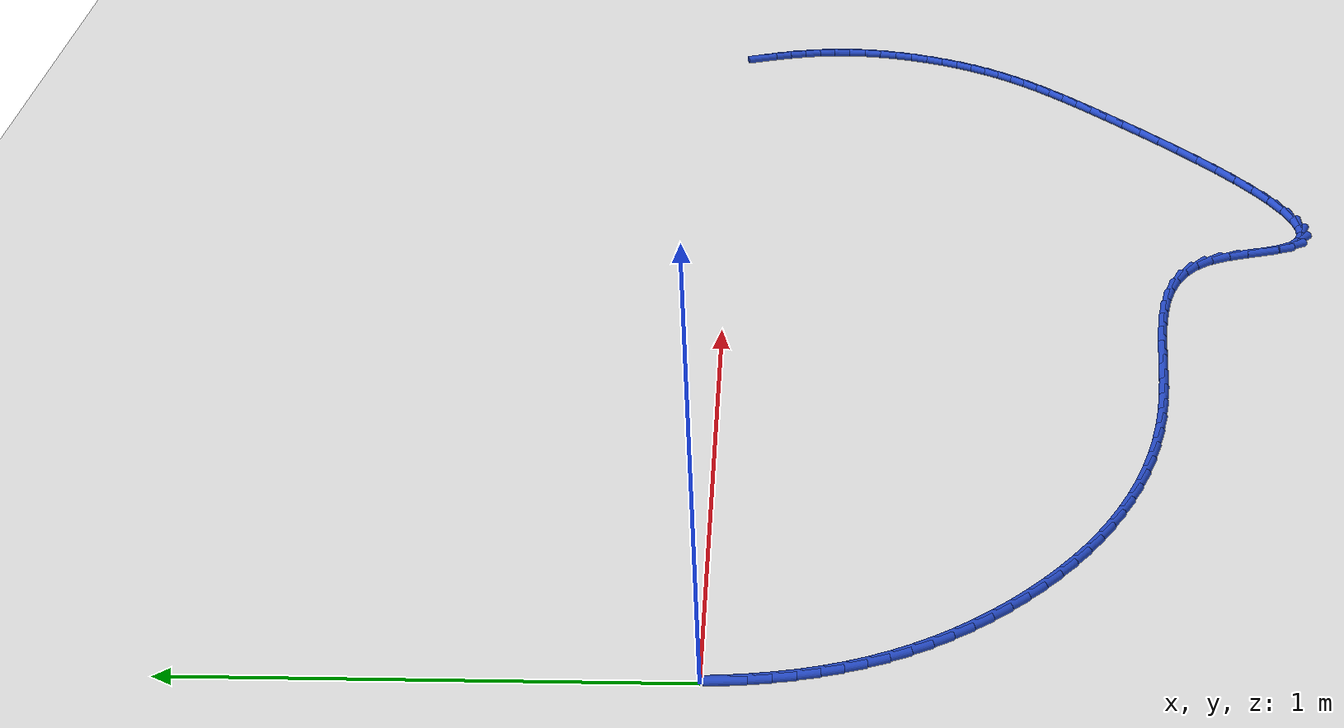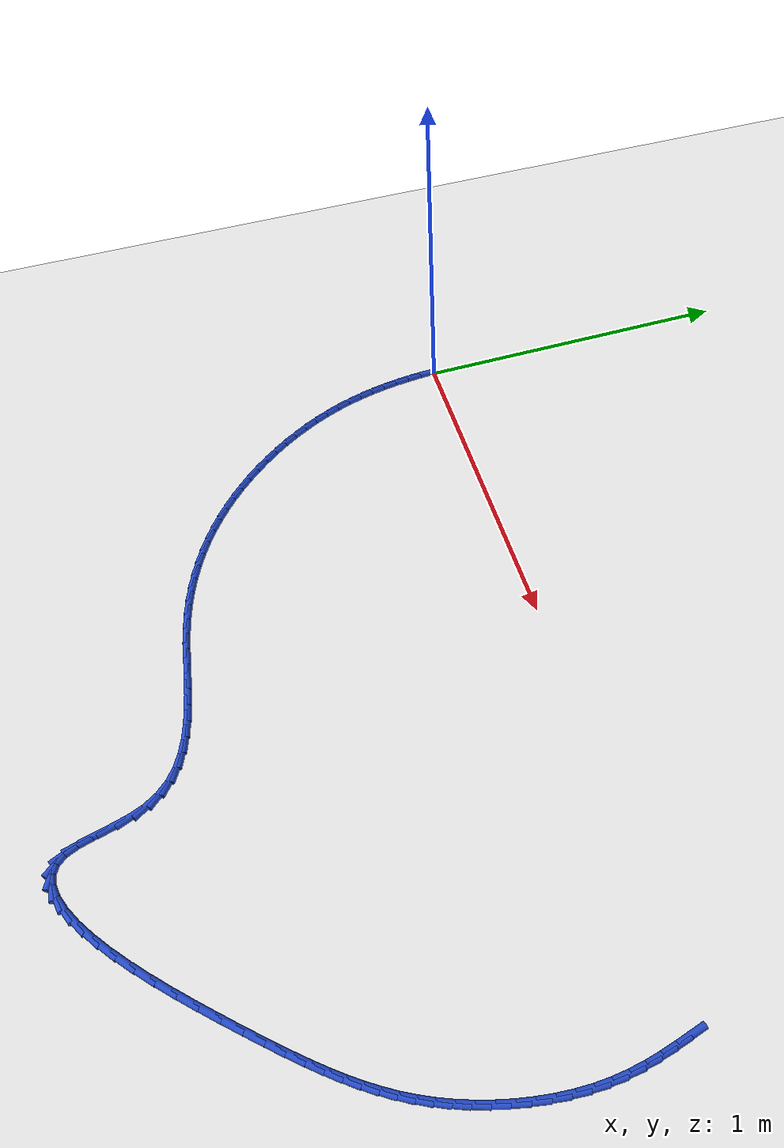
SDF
<sdf version="1.6">
 <world name="default">
  <model name="ground_plane">
   <static>1</static>
   <link name="link">
    <collision name="collision">
     <geometry><plane><normal>0 0 1</normal><size>100 100</size></plane></geometry>
     <surface><friction><ode><mu>100</mu><mu2>50</mu2></ode></friction></surface>
    </collision>
    <visual name="visual">
     <cast_shadows>0</cast_shadows>
     <geometry><plane><normal>0 0 1</normal><size>100 100</size></plane></geometry>
     <material>
      <script><uri>file://media/materials/scripts/gazebo.material</uri><name>Gazebo/WhiteGlow</name></script>
     </material>
    </visual>
   </link>
  </model>
  <model name="line">
   <link name="link_84">
    <pose>2.2013271579879783 -0.0657133899753149 0.01 0 1.57 -1.3248606555706637</pose>
    <collision name="collision">
     <geometry><cylinder><radius>0.01</radius><length>0.08</length></cylinder></geometry>
    </collision>
    <visual name="visual">
     <material>
      <script><name>Gazebo/Blue</name><uri>file://media/materials/scripts/gazebo.material</uri></script>
     </material>
     <geometry><cylinder><radius>0.01</radius><length>0.08</length></cylinder></geometry>
    </visual>
   </link>
   <link name="link_85">
    <pose>2.211740124722569 -0.1071964929070348 0.01 0 1.57 -1.3524094646093547</pose>
    <collision name="collision">
     <geometry><cylinder><radius>0.01</radius><length>0.08</length></cylinder></geometry>
    </collision>
    <visual name="visual">
     <material>
      <script><name>Gazebo/Blue</name><uri>file://media/materials/scripts/gazebo.material</uri></script>
     </material>
     <geometry><cylinder><radius>0.01</radius><length>0.08</length></cylinder></geometry>
    </visual>
   </link>
   <link name="link_86">
    <pose>2.2209683147176107 -0.14877873453246604 0.01 0 1.57 -1.3912799097325852</pose>
    <collision name="collision">
     <geometry><cylinder><radius>0.01</radius><length>0.08</length></cylinder></geometry>
    </collision>
    <visual name="visual">
     <material>
      <script><name>Gazebo/Blue</name><uri>file://media/materials/scripts/gazebo.material</uri></script>
     </material>
     <geometry><cylinder><radius>0.01</radius><length>0.08</length></cylinder></geometry>
    </visual>
   </link>
   <link name="link_87">
    <pose>2.2285708367887707 -0.19067283838976418 0.01 0 1.57 -1.441022154322035</pose>
    <collision name="collision">
     <geometry><cylinder><radius>0.01</radius><length>0.08</length></cylinder></geometry>
    </collision>
    <visual name="visual">
     <material>
      <script><name>Gazebo/Blue</name><uri>file://media/materials/scripts/gazebo.material</uri></script>
     </material>
     <geometry><cylinder><radius>0.01</radius><length>0.08</length></cylinder></geometry>
    </visual>
   </link>
   <link name="link_88">
    <pose>2.234106799751719 -0.23309152801708485 0.01 0 1.57 -1.500735248012386</pose>
    <collision name="collision">
     <geometry><cylinder><radius>0.01</radius><length>0.08</length></cylinder></geometry>
    </collision>
    <visual name="visual">
     <material>
      <script><name>Gazebo/Blue</name><uri>file://media/materials/scripts/gazebo.material</uri></script>
     </material>
     <geometry><cylinder><radius>0.01</radius><length>0.08</length></cylinder></geometry>
    </visual>
   </link>
   <link name="link_89">
    <pose>2.237135312422124 -0.2762475269525845 0.01 0 1.57 -1.5666318447665388</pose>
    <collision name="collision">
     <geometry><cylinder><radius>0.01</radius><length>0.08</length></cylinder></geometry>
    </collision>
    <visual name="visual">
     <material>
      <script><name>Gazebo/Blue</name><uri>file://media/materials/scripts/gazebo.material</uri></script>
     </material>
     <geometry><cylinder><radius>0.01</radius><length>0.08</length></cylinder></geometry>
    </visual>
   </link>
   <link name="link_90">
    <pose>2.237318600684149 -0.32025953161281584 0.01 0 1.57 1.5131863571076871</pose>
    <collision name="collision">
     <geometry><cylinder><radius>0.01</radius><length>0.08</length></cylinder></geometry>
    </collision>
    <visual name="visual">
     <material>
      <script><name>Gazebo/Blue</name><uri>file://media/materials/scripts/gazebo.material</uri></script>
     </material>
     <geometry><cylinder><radius>0.01</radius><length>0.08</length></cylinder></geometry>
    </visual>
   </link>
   <link name="link_91">
    <pose>2.2347465366789048 -0.3648562899102579 0.01 0 1.57 1.4568798654441177</pose>
    <collision name="collision">
     <geometry><cylinder><radius>0.01</radius><length>0.08</length></cylinder></geometry>
    </collision>
    <visual name="visual">
     <material>
      <script><name>Gazebo/Blue</name><uri>file://media/materials/scripts/gazebo.material</uri></script>
     </material>
     <geometry><cylinder><radius>0.01</radius><length>0.08</length></cylinder></geometry>
    </visual>
   </link>
   <link name="link_92">
    <pose>2.229619837200847 -0.40966547625083005 0.01 0 1.57 1.404796381136732</pose>
    <collision name="collision">
     <geometry><cylinder><radius>0.01</radius><length>0.08</length></cylinder></geometry>
    </collision>
    <visual name="visual">
     <material>
      <script><name>Gazebo/Blue</name><uri>file://media/materials/scripts/gazebo.material</uri></script>
     </material>
     <geometry><cylinder><radius>0.01</radius><length>0.08</length></cylinder></geometry>
    </visual>
   </link>
   <link name="link_93">
    <pose>2.222139219231285 -0.4543147648700687 0.01 0 1.57 1.3558018226067354</pose>
    <collision name="collision">
     <geometry><cylinder><radius>0.01</radius><length>0.08</length></cylinder></geometry>
    </collision>
    <visual name="visual">
     <material>
      <script><name>Gazebo/Blue</name><uri>file://media/materials/scripts/gazebo.material</uri></script>
     </material>
     <geometry><cylinder><radius>0.01</radius><length>0.08</length></cylinder></geometry>
    </visual>
   </link>
   <link name="link_94">
    <pose>2.2125053997515294 -0.4984318300035112 0.01 0 1.57 1.3088340341115168</pose>
    <collision name="collision">
     <geometry><cylinder><radius>0.01</radius><length>0.08</length></cylinder></geometry>
    </collision>
    <visual name="visual">
     <material>
      <script><name>Gazebo/Blue</name><uri>file://media/materials/scripts/gazebo.material</uri></script>
     </material>
     <geometry><cylinder><radius>0.01</radius><length>0.08</length></cylinder></geometry>
    </visual>
   </link>
   <link name="link_95">
    <pose>2.20091909574289 -0.5416443458866924 0.01 0 1.57 1.2628537005779013</pose>
    <collision name="collision">
     <geometry><cylinder><radius>0.01</radius><length>0.08</length></cylinder></geometry>
    </collision>
    <visual name="visual">
     <material>
      <script><name>Gazebo/Blue</name><uri>file://media/materials/scripts/gazebo.material</uri></script>
     </material>
     <geometry><cylinder><radius>0.01</radius><length>0.08</length></cylinder></geometry>
    </visual>
   </link>
   <link name="link_96">
    <pose>2.187581024186676 -0.5835799867551497 0.01 0 1.57 1.2167845822952346</pose>
    <collision name="collision">
     <geometry><cylinder><radius>0.01</radius><length>0.08</length></cylinder></geometry>
    </collision>
    <visual name="visual">
     <material>
      <script><name>Gazebo/Blue</name><uri>file://media/materials/scripts/gazebo.material</uri></script>
     </material>
     <geometry><cylinder><radius>0.01</radius><length>0.08</length></cylinder></geometry>
    </visual>
   </link>
   <link name="link_97">
    <pose>2.1726919020641975 -0.6238664268444192 0.01 0 1.57 1.1694541630543898</pose>
    <collision name="collision">
     <geometry><cylinder><radius>0.01</radius><length>0.08</length></cylinder></geometry>
    </collision>
    <visual name="visual">
     <material>
      <script><name>Gazebo/Blue</name><uri>file://media/materials/scripts/gazebo.material</uri></script>
     </material>
     <geometry><cylinder><radius>0.01</radius><length>0.08</length></cylinder></geometry>
    </visual>
   </link>
   <link name="link_98">
    <pose>2.1564053051471594 -0.6622441609305288 0.01 0 1.57 1.1206522161606176</pose>
    <collision name="collision">
     <geometry><cylinder><radius>0.01</radius><length>0.08</length></cylinder></geometry>
    </collision>
    <visual name="visual">
     <material>
      <script><name>Gazebo/Blue</name><uri>file://media/materials/scripts/gazebo.material</uri></script>
     </material>
     <geometry><cylinder><radius>0.01</radius><length>0.08</length></cylinder></geometry>
    </visual>
   </link>
   <link name="link_99">
    <pose>2.138664794897101 -0.698956299827194 0.01 0 1.57 1.0717954375740855</pose>
    <collision name="collision">
     <geometry><cylinder><radius>0.01</radius><length>0.08</length></cylinder></geometry>
    </collision>
    <visual name="visual">
     <material>
      <script><name>Gazebo/Blue</name><uri>file://media/materials/scripts/gazebo.material</uri></script>
     </material>
     <geometry><cylinder><radius>0.01</radius><length>0.08</length></cylinder></geometry>
    </visual>
   </link>
   <link name="link_100">
    <pose>2.1193554705651394 -0.7343858688355418 0.01 0 1.57 1.0245409572959812</pose>
    <collision name="collision">
     <geometry><cylinder><radius>0.01</radius><length>0.08</length></cylinder></geometry>
    </collision>
    <visual name="visual">
     <material>
      <script><name>Gazebo/Blue</name><uri>file://media/materials/scripts/gazebo.material</uri></script>
     </material>
     <geometry><cylinder><radius>0.01</radius><length>0.08</length></cylinder></geometry>
    </visual>
   </link>
   <link name="link_101">
    <pose>2.0983624289716833 -0.7689158990739896 0.01 0 1.57 0.9804367857550429</pose>
    <collision name="collision">
     <geometry><cylinder><radius>0.01</radius><length>0.08</length></cylinder></geometry>
    </collision>
    <visual name="visual">
     <material>
      <script><name>Gazebo/Blue</name><uri>file://media/materials/scripts/gazebo.material</uri></script>
     </material>
     <geometry><cylinder><radius>0.01</radius><length>0.08</length></cylinder></geometry>
    </visual>
   </link>
   <link name="link_102">
    <pose>2.0755707669371404 -0.802929421660954 0.01 0 1.57 0.9407434284842913</pose>
    <collision name="collision">
     <geometry><cylinder><radius>0.01</radius><length>0.08</length></cylinder></geometry>
    </collision>
    <visual name="visual">
     <material>
      <script><name>Gazebo/Blue</name><uri>file://media/materials/scripts/gazebo.material</uri></script>
     </material>
     <geometry><cylinder><radius>0.01</radius><length>0.08</length></cylinder></geometry>
    </visual>
   </link>
   <link name="link_103">
    <pose>2.05086558128192 -0.8368094677148517 0.01 0 1.57 0.9063234691494284</pose>
    <collision name="collision">
     <geometry><cylinder><radius>0.01</radius><length>0.08</length></cylinder></geometry>
    </collision>
    <visual name="visual">
     <material>
      <script><name>Gazebo/Blue</name><uri>file://media/materials/scripts/gazebo.material</uri></script>
     </material>
     <geometry><cylinder><radius>0.01</radius><length>0.08</length></cylinder></geometry>
    </visual>
   </link>
   <link name="link_104">
    <pose>2.0241319688264277 -0.8709390683540992 0.01 0 1.57 0.8776142610360553</pose>
    <collision name="collision">
     <geometry><cylinder><radius>0.01</radius><length>0.08</length></cylinder></geometry>
    </collision>
    <visual name="visual">
     <material>
      <script><name>Gazebo/Blue</name><uri>file://media/materials/scripts/gazebo.material</uri></script>
     </material>
     <geometry><cylinder><radius>0.01</radius><length>0.08</length></cylinder></geometry>
    </visual>
   </link>
   <link name="link_105">
    <pose>1.9952550263910747 -0.9057012546971124 0.01 0 1.57 0.8546702121998856</pose>
    <collision name="collision">
     <geometry><cylinder><radius>0.01</radius><length>0.08</length></cylinder></geometry>
    </collision>
    <visual name="visual">
     <material>
      <script><name>Gazebo/Blue</name><uri>file://media/materials/scripts/gazebo.material</uri></script>
     </material>
     <geometry><cylinder><radius>0.01</radius><length>0.08</length></cylinder></geometry>
    </visual>
   </link>
   <link name="link_106">
    <pose>1.9641198507962672 -0.9414790578623081 0.01 0 1.57 0.8372459949637604</pose>
    <collision name="collision">
     <geometry><cylinder><radius>0.01</radius><length>0.08</length></cylinder></geometry>
    </collision>
    <visual name="visual">
     <material>
      <script><name>Gazebo/Blue</name><uri>file://media/materials/scripts/gazebo.material</uri></script>
     </material>
     <geometry><cylinder><radius>0.01</radius><length>0.08</length></cylinder></geometry>
    </visual>
   </link>
   <link name="link_107">
    <pose>1.9306115388624145 -0.9786555089681035 0.01 0 1.57 0.8248919814943011</pose>
    <collision name="collision">
     <geometry><cylinder><radius>0.01</radius><length>0.08</length></cylinder></geometry>
    </collision>
    <visual name="visual">
     <material>
      <script><name>Gazebo/Blue</name><uri>file://media/materials/scripts/gazebo.material</uri></script>
     </material>
     <geometry><cylinder><radius>0.01</radius><length>0.08</length></cylinder></geometry>
    </visual>
   </link>
   <link name="link_108">
    <pose>1.894615187409924 -1.0176136391329142 0.01 0 1.57 0.8167159727173373</pose>
    <collision name="collision">
     <geometry><cylinder><radius>0.01</radius><length>0.08</length></cylinder></geometry>
    </collision>
    <visual name="visual">
     <material>
      <script><name>Gazebo/Blue</name><uri>file://media/materials/scripts/gazebo.material</uri></script>
     </material>
     <geometry><cylinder><radius>0.01</radius><length>0.08</length></cylinder></geometry>
    </visual>
   </link>
   <link name="link_109">
    <pose>1.8560448738517847 -1.058678776249 0.01 0 1.57 0.8080381649546208</pose>
    <collision name="collision">
     <geometry><cylinder><radius>0.01</radius><length>0.08</length></cylinder></geometry>
    </collision>
    <visual name="visual">
     <material>
      <script><name>Gazebo/Blue</name><uri>file://media/materials/scripts/gazebo.material</uri></script>
     </material>
     <geometry><cylinder><radius>0.01</radius><length>0.08</length></cylinder></geometry>
    </visual>
   </link>
   <link name="link_110">
    <pose>1.8151923267569985 -1.1014243074053602 0.01 0 1.57 0.795788223044278</pose>
    <collision name="collision">
     <geometry><cylinder><radius>0.01</radius><length>0.08</length></cylinder></geometry>
    </collision>
    <visual name="visual">
     <material>
      <script><name>Gazebo/Blue</name><uri>file://media/materials/scripts/gazebo.material</uri></script>
     </material>
     <geometry><cylinder><radius>0.01</radius><length>0.08</length></cylinder></geometry>
    </visual>
   </link>
   <link name="link_111">
    <pose>1.7726137800003794 -1.144896963466194 0.01 0 1.57 0.779566903005502</pose>
    <collision name="collision">
     <geometry><cylinder><radius>0.01</radius><length>0.08</length></cylinder></geometry>
    </collision>
    <visual name="visual">
     <material>
      <script><name>Gazebo/Blue</name><uri>file://media/materials/scripts/gazebo.material</uri></script>
     </material>
     <geometry><cylinder><radius>0.01</radius><length>0.08</length></cylinder></geometry>
    </visual>
   </link>
   <link name="link_112">
    <pose>1.7288709154351722 -1.188132627831807 0.01 0 1.57 0.7586513257978407</pose>
    <collision name="collision">
     <geometry><cylinder><radius>0.01</radius><length>0.08</length></cylinder></geometry>
    </collision>
    <visual name="visual">
     <material>
      <script><name>Gazebo/Blue</name><uri>file://media/materials/scripts/gazebo.material</uri></script>
     </material>
     <geometry><cylinder><radius>0.01</radius><length>0.08</length></cylinder></geometry>
    </visual>
   </link>
   <link name="link_113">
    <pose>1.684525414914624 -1.2301671839025046 0.01 0 1.57 0.7318374129736538</pose>
    <collision name="collision">
     <geometry><cylinder><radius>0.01</radius><length>0.08</length></cylinder></geometry>
    </collision>
    <visual name="visual">
     <material>
      <script><name>Gazebo/Blue</name><uri>file://media/materials/scripts/gazebo.material</uri></script>
     </material>
     <geometry><cylinder><radius>0.01</radius><length>0.08</length></cylinder></geometry>
    </visual>
   </link>
   <link name="link_114">
    <pose>1.6401389602919814 -1.270036515078591 0.01 0 1.57 0.6972249971474337</pose>
    <collision name="collision">
     <geometry><cylinder><radius>0.01</radius><length>0.08</length></cylinder></geometry>
    </collision>
    <visual name="visual">
     <material>
      <script><name>Gazebo/Blue</name><uri>file://media/materials/scripts/gazebo.material</uri></script>
     </material>
     <geometry><cylinder><radius>0.01</radius><length>0.08</length></cylinder></geometry>
    </visual>
   </link>
   <link name="link_115">
    <pose>1.5962732334204888 -1.3067765047603725 0.01 0 1.57 0.6518115829081913</pose>
    <collision name="collision">
     <geometry><cylinder><radius>0.01</radius><length>0.08</length></cylinder></geometry>
    </collision>
    <visual name="visual">
     <material>
      <script><name>Gazebo/Blue</name><uri>file://media/materials/scripts/gazebo.material</uri></script>
     </material>
     <geometry><cylinder><radius>0.01</radius><length>0.08</length></cylinder></geometry>
    </visual>
   </link>
   <link name="link_116">
    <pose>1.5534899161533955 -1.3394230363481523 0.01 0 1.57 0.5907373734397169</pose>
    <collision name="collision">
     <geometry><cylinder><radius>0.01</radius><length>0.08</length></cylinder></geometry>
    </collision>
    <visual name="visual">
     <material>
      <script><name>Gazebo/Blue</name><uri>file://media/materials/scripts/gazebo.material</uri></script>
     </material>
     <geometry><cylinder><radius>0.01</radius><length>0.08</length></cylinder></geometry>
    </visual>
   </link>
   <link name="link_117">
    <pose>1.5123506903439463 -1.3670119932422362 0.01 0 1.57 0.505872345627535</pose>
    <collision name="collision">
     <geometry><cylinder><radius>0.01</radius><length>0.08</length></cylinder></geometry>
    </collision>
    <visual name="visual">
     <material>
      <script><name>Gazebo/Blue</name><uri>file://media/materials/scripts/gazebo.material</uri></script>
     </material>
     <geometry><cylinder><radius>0.01</radius><length>0.08</length></cylinder></geometry>
    </visual>
   </link>
   <link name="link_118">
    <pose>1.4734172378453878 -1.388579258842929 0.01 0 1.57 0.38324595747064827</pose>
    <collision name="collision">
     <geometry><cylinder><radius>0.01</radius><length>0.08</length></cylinder></geometry>
    </collision>
    <visual name="visual">
     <material>
      <script><name>Gazebo/Blue</name><uri>file://media/materials/scripts/gazebo.material</uri></script>
     </material>
     <geometry><cylinder><radius>0.01</radius><length>0.08</length></cylinder></geometry>
    </visual>
   </link>
   <link name="link_119">
    <pose>1.4372512405109663 -1.4031607165505355 0.01 0 1.57 0.19927363737288842</pose>
    <collision name="collision">
     <geometry><cylinder><radius>0.01</radius><length>0.08</length></cylinder></geometry>
    </collision>
    <visual name="visual">
     <material>
      <script><name>Gazebo/Blue</name><uri>file://media/materials/scripts/gazebo.material</uri></script>
     </material>
     <geometry><cylinder><radius>0.01</radius><length>0.08</length></cylinder></geometry>
    </visual>
   </link>
   <link name="link_120">
    <pose>1.404414380193929 -1.4097922497653612 0.01 0 1.57 -0.07869105779277984</pose>
    <collision name="collision">
     <geometry><cylinder><radius>0.01</radius><length>0.08</length></cylinder></geometry>
    </collision>
    <visual name="visual">
     <material>
      <script><name>Gazebo/Blue</name><uri>file://media/materials/scripts/gazebo.material</uri></script>
     </material>
     <geometry><cylinder><radius>0.01</radius><length>0.08</length></cylinder></geometry>
    </visual>
   </link>
   <link name="link_121">
    <pose>1.3754683387475204 -1.40750974188771 0.01 0 1.57 -0.46083132980813657</pose>
    <collision name="collision">
     <geometry><cylinder><radius>0.01</radius><length>0.08</length></cylinder></geometry>
    </collision>
    <visual name="visual">
     <material>
      <script><name>Gazebo/Blue</name><uri>file://media/materials/scripts/gazebo.material</uri></script>
     </material>
     <geometry><cylinder><radius>0.01</radius><length>0.08</length></cylinder></geometry>
    </visual>
   </link>
   <link name="link_122">
    <pose>1.3509747980249887 -1.3953490763178873 0.01 0 1.57 -0.8681510374738388</pose>
    <collision name="collision">
     <geometry><cylinder><radius>0.01</radius><length>0.08</length></cylinder></geometry>
    </collision>
    <visual name="visual">
     <material>
      <script><name>Gazebo/Blue</name><uri>file://media/materials/scripts/gazebo.material</uri></script>
     </material>
     <geometry><cylinder><radius>0.01</radius><length>0.08</length></cylinder></geometry>
    </visual>
   </link>
   <link name="link_123">
    <pose>1.3314954388708247 -1.3723461380815363 0.01 0 1.57 -1.1696335803262696</pose>
    <collision name="collision">
     <geometry><cylinder><radius>0.01</radius><length>0.08</length></cylinder></geometry>
    </collision>
    <visual name="visual">
     <material>
      <script><name>Gazebo/Blue</name><uri>file://media/materials/scripts/gazebo.material</uri></script>
     </material>
     <geometry><cylinder><radius>0.01</radius><length>0.08</length></cylinder></geometry>
    </visual>
   </link>
   <link name="link_124">
    <pose>1.3170802579172047 -1.3383612538174923 0.01 0 1.57 -1.308204648839035</pose>
    <collision name="collision">
     <geometry><cylinder><radius>0.01</radius><length>0.08</length></cylinder></geometry>
    </collision>
    <visual name="visual">
     <material>
      <script><name>Gazebo/Blue</name><uri>file://media/materials/scripts/gazebo.material</uri></script>
     </material>
     <geometry><cylinder><radius>0.01</radius><length>0.08</length></cylinder></geometry>
    </visual>
   </link>
   <link name="link_125">
    <pose>1.305809003272132 -1.2964292762347116 0.01 0 1.57 -1.3463099634328177</pose>
    <collision name="collision">
     <geometry><cylinder><radius>0.01</radius><length>0.08</length></cylinder></geometry>
    </collision>
    <visual name="visual">
     <material>
      <script><name>Gazebo/Blue</name><uri>file://media/materials/scripts/gazebo.material</uri></script>
     </material>
     <geometry><cylinder><radius>0.01</radius><length>0.08</length></cylinder></geometry>
    </visual>
   </link>
   <link name="link_126">
    <pose>1.2952872735714958 -1.2503490225074836 0.01 0 1.57 -1.3145150820001312</pose>
    <collision name="collision">
     <geometry><cylinder><radius>0.01</radius><length>0.08</length></cylinder></geometry>
    </collision>
    <visual name="visual">
     <material>
      <script><name>Gazebo/Blue</name><uri>file://media/materials/scripts/gazebo.material</uri></script>
     </material>
     <geometry><cylinder><radius>0.01</radius><length>0.08</length></cylinder></geometry>
    </visual>
   </link>
   <link name="link_127">
    <pose>1.2831206674511904 -1.2039193098101015 0.01 0 1.57 -1.2102324388463543</pose>
    <collision name="collision">
     <geometry><cylinder><radius>0.01</radius><length>0.08</length></cylinder></geometry>
    </collision>
    <visual name="visual">
     <material>
      <script><name>Gazebo/Blue</name><uri>file://media/materials/scripts/gazebo.material</uri></script>
     </material>
     <geometry><cylinder><radius>0.01</radius><length>0.08</length></cylinder></geometry>
    </visual>
   </link>
   <link name="link_128">
    <pose>1.2669149626556606 -1.160938687262232 0.01 0 1.57 -1.0298804139101512</pose>
    <collision name="collision">
     <geometry><cylinder><radius>0.01</radius><length>0.08</length></cylinder></geometry>
    </collision>
    <visual name="visual">
     <material>
      <script><name>Gazebo/Blue</name><uri>file://media/materials/scripts/gazebo.material</uri></script>
     </material>
     <geometry><cylinder><radius>0.01</radius><length>0.08</length></cylinder></geometry>
    </visual>
   </link>
   <link name="link_129">
    <pose>1.2448947473756253 -1.1242795896423312 0.01 0 1.57 -0.834564152048463</pose>
    <collision name="collision">
     <geometry><cylinder><radius>0.01</radius><length>0.08</length></cylinder></geometry>
    </collision>
    <visual name="visual">
     <material>
      <script><name>Gazebo/Blue</name><uri>file://media/materials/scripts/gazebo.material</uri></script>
     </material>
     <geometry><cylinder><radius>0.01</radius><length>0.08</length></cylinder></geometry>
    </visual>
   </link>
   <link name="link_130">
    <pose>1.217288286037315 -1.0938157413676555 0.01 0 1.57 -0.6548236844054752</pose>
    <collision name="collision">
     <geometry><cylinder><radius>0.01</radius><length>0.08</length></cylinder></geometry>
    </collision>
    <visual name="visual">
     <material>
      <script><name>Gazebo/Blue</name><uri>file://media/materials/scripts/gazebo.material</uri></script>
     </material>
     <geometry><cylinder><radius>0.01</radius><length>0.08</length></cylinder></geometry>
    </visual>
   </link>
   <link name="link_131">
    <pose>1.184728652153187 -1.0688150278582904 0.01 0 1.57 -0.50254838788088</pose>
    <collision name="collision">
     <geometry><cylinder><radius>0.01</radius><length>0.08</length></cylinder></geometry>
    </collision>
    <visual name="visual">
     <material>
      <script><name>Gazebo/Blue</name><uri>file://media/materials/scripts/gazebo.material</uri></script>
     </material>
     <geometry><cylinder><radius>0.01</radius><length>0.08</length></cylinder></geometry>
    </visual>
   </link>
   <link name="link_132">
    <pose>1.1478489192357 -1.0485453345343243 0.01 0 1.57 -0.38144284575568543</pose>
    <collision name="collision">
     <geometry><cylinder><radius>0.01</radius><length>0.08</length></cylinder></geometry>
    </collision>
    <visual name="visual">
     <material>
      <script><name>Gazebo/Blue</name><uri>file://media/materials/scripts/gazebo.material</uri></script>
     </material>
     <geometry><cylinder><radius>0.01</radius><length>0.08</length></cylinder></geometry>
    </visual>
   </link>
   <link name="link_133">
    <pose>1.1072821607973107 -1.0322745468158427 0.01 0 1.57 -0.2897267217586763</pose>
    <collision name="collision">
     <geometry><cylinder><radius>0.01</radius><length>0.08</length></cylinder></geometry>
    </collision>
    <visual name="visual">
     <material>
      <script><name>Gazebo/Blue</name><uri>file://media/materials/scripts/gazebo.material</uri></script>
     </material>
     <geometry><cylinder><radius>0.01</radius><length>0.08</length></cylinder></geometry>
    </visual>
   </link>
   <link name="link_134">
    <pose>1.063661450350477 -1.0192705501229329 0.01 0 1.57 -0.2235865278756157</pose>
    <collision name="collision">
     <geometry><cylinder><radius>0.01</radius><length>0.08</length></cylinder></geometry>
    </collision>
    <visual name="visual">
     <material>
      <script><name>Gazebo/Blue</name><uri>file://media/materials/scripts/gazebo.material</uri></script>
     </material>
     <geometry><cylinder><radius>0.01</radius><length>0.08</length></cylinder></geometry>
    </visual>
   </link>
   <link name="link_135">
    <pose>1.0176198614076564 -1.0088012298756808 0.01 0 1.57 -0.17925649633652874</pose>
    <collision name="collision">
     <geometry><cylinder><radius>0.01</radius><length>0.08</length></cylinder></geometry>
    </collision>
    <visual name="visual">
     <material>
      <script><name>Gazebo/Blue</name><uri>file://media/materials/scripts/gazebo.material</uri></script>
     </material>
     <geometry><cylinder><radius>0.01</radius><length>0.08</length></cylinder></geometry>
    </visual>
   </link>
   <link name="link_136">
    <pose>0.9697904674813057 -1.000134471494174 0.01 0 1.57 -0.15385149035576845</pose>
    <collision name="collision">
     <geometry><cylinder><radius>0.01</radius><length>0.08</length></cylinder></geometry>
    </collision>
    <visual name="visual">
     <material>
      <script><name>Gazebo/Blue</name><uri>file://media/materials/scripts/gazebo.material</uri></script>
     </material>
     <geometry><cylinder><radius>0.01</radius><length>0.08</length></cylinder></geometry>
    </visual>
   </link>
   <link name="link_137">
    <pose>0.9208063420838839 -0.9925381603984988 0.01 0 1.57 -0.14557163112425087</pose>
    <collision name="collision">
     <geometry><cylinder><radius>0.01</radius><length>0.08</length></cylinder></geometry>
    </collision>
    <visual name="visual">
     <material>
      <script><name>Gazebo/Blue</name><uri>file://media/materials/scripts/gazebo.material</uri></script>
     </material>
     <geometry><cylinder><radius>0.01</radius><length>0.08</length></cylinder></geometry>
    </visual>
   </link>
   <link name="link_138">
    <pose>0.8713005587278481 -0.9852801820087419 0.01 0 1.57 -0.1536899673426834</pose>
    <collision name="collision">
     <geometry><cylinder><radius>0.01</radius><length>0.08</length></cylinder></geometry>
    </collision>
    <visual name="visual">
     <material>
      <script><name>Gazebo/Blue</name><uri>file://media/materials/scripts/gazebo.material</uri></script>
     </material>
     <geometry><cylinder><radius>0.01</radius><length>0.08</length></cylinder></geometry>
    </visual>
   </link>
   <link name="link_139">
    <pose>0.8219061909256554 -0.97762842174499 0.01 0 1.57 -0.17850461656932534</pose>
    <collision name="collision">
     <geometry><cylinder><radius>0.01</radius><length>0.08</length></cylinder></geometry>
    </collision>
    <visual name="visual">
     <material>
      <script><name>Gazebo/Blue</name><uri>file://media/materials/scripts/gazebo.material</uri></script>
     </material>
     <geometry><cylinder><radius>0.01</radius><length>0.08</length></cylinder></geometry>
    </visual>
   </link>
   <link name="link_140">
    <pose>0.7732563121897641 -0.9688507650273298 0.01 0 1.57 -0.22038374620425666</pose>
    <collision name="collision">
     <geometry><cylinder><radius>0.01</radius><length>0.08</length></cylinder></geometry>
    </collision>
    <visual name="visual">
     <material>
      <script><name>Gazebo/Blue</name><uri>file://media/materials/scripts/gazebo.material</uri></script>
     </material>
     <geometry><cylinder><radius>0.01</radius><length>0.08</length></cylinder></geometry>
    </visual>
   </link>
   <link name="link_141">
    <pose>0.7259516354074228 -0.958253458191244 0.01 0 1.57 -0.27002643881672045</pose>
    <collision name="collision">
     <geometry><cylinder><radius>0.01</radius><length>0.08</length></cylinder></geometry>
    </collision>
    <visual name="visual">
     <material>
      <script><name>Gazebo/Blue</name><uri>file://media/materials/scripts/gazebo.material</uri></script>
     </material>
     <geometry><cylinder><radius>0.01</radius><length>0.08</length></cylinder></geometry>
    </visual>
   </link>
   <link name="link_142">
    <pose>0.680212617132178 -0.9455935108362814 0.01 0 1.57 -0.3205093502166227</pose>
    <collision name="collision">
     <geometry><cylinder><radius>0.01</radius><length>0.08</length></cylinder></geometry>
    </collision>
    <visual name="visual">
     <material>
      <script><name>Gazebo/Blue</name><uri>file://media/materials/scripts/gazebo.material</uri></script>
     </material>
     <geometry><cylinder><radius>0.01</radius><length>0.08</length></cylinder></geometry>
    </visual>
   </link>
   <link name="link_143">
    <pose>0.6360124435843201 -0.9309210516310166 0.01 0 1.57 -0.3714460374091106</pose>
    <collision name="collision">
     <geometry><cylinder><radius>0.01</radius><length>0.08</length></cylinder></geometry>
    </collision>
    <visual name="visual">
     <material>
      <script><name>Gazebo/Blue</name><uri>file://media/materials/scripts/gazebo.material</uri></script>
     </material>
     <geometry><cylinder><radius>0.01</radius><length>0.08</length></cylinder></geometry>
    </visual>
   </link>
   <link name="link_144">
    <pose>0.5933200916012398 -0.9142911991284937 0.01 0 1.57 -0.42255381795064306</pose>
    <collision name="collision">
     <geometry><cylinder><radius>0.01</radius><length>0.08</length></cylinder></geometry>
    </collision>
    <visual name="visual">
     <material>
      <script><name>Gazebo/Blue</name><uri>file://media/materials/scripts/gazebo.material</uri></script>
     </material>
     <geometry><cylinder><radius>0.01</radius><length>0.08</length></cylinder></geometry>
    </visual>
   </link>
   <link name="link_145">
    <pose>0.5521045380203291 -0.8957590718817579 0.01 0 1.57 -0.4735432028455708</pose>
    <collision name="collision">
     <geometry><cylinder><radius>0.01</radius><length>0.08</length></cylinder></geometry>
    </collision>
    <visual name="visual">
     <material>
      <script><name>Gazebo/Blue</name><uri>file://media/materials/scripts/gazebo.material</uri></script>
     </material>
     <geometry><cylinder><radius>0.01</radius><length>0.08</length></cylinder></geometry>
    </visual>
   </link>
   <link name="link_146">
    <pose>0.5123347596789797 -0.8753797884438544 0.01 0 1.57 -0.5241272868754507</pose>
    <collision name="collision">
     <geometry><cylinder><radius>0.01</radius><length>0.08</length></cylinder></geometry>
    </collision>
    <visual name="visual">
     <material>
      <script><name>Gazebo/Blue</name><uri>file://media/materials/scripts/gazebo.material</uri></script>
     </material>
     <geometry><cylinder><radius>0.01</radius><length>0.08</length></cylinder></geometry>
    </visual>
   </link>
   <link name="link_147">
    <pose>0.47397973341458205 -0.8532084673678271 0.01 0 1.57 -0.5740309239862205</pose>
    <collision name="collision">
     <geometry><cylinder><radius>0.01</radius><length>0.08</length></cylinder></geometry>
    </collision>
    <visual name="visual">
     <material>
      <script><name>Gazebo/Blue</name><uri>file://media/materials/scripts/gazebo.material</uri></script>
     </material>
     <geometry><cylinder><radius>0.01</radius><length>0.08</length></cylinder></geometry>
    </visual>
   </link>
   <link name="link_148">
    <pose>0.4370084360645298 -0.8293002272067219 0.01 0 1.57 -0.6229989646162871</pose>
    <collision name="collision">
     <geometry><cylinder><radius>0.01</radius><length>0.08</length></cylinder></geometry>
    </collision>
    <visual name="visual">
     <material>
      <script><name>Gazebo/Blue</name><uri>file://media/materials/scripts/gazebo.material</uri></script>
     </material>
     <geometry><cylinder><radius>0.01</radius><length>0.08</length></cylinder></geometry>
    </visual>
   </link>
   <link name="link_149">
    <pose>0.4013898444662137 -0.8037101865135832 0.01 0 1.57 -0.6708029671377865</pose>
    <collision name="collision">
     <geometry><cylinder><radius>0.01</radius><length>0.08</length></cylinder></geometry>
    </collision>
    <visual name="visual">
     <material>
      <script><name>Gazebo/Blue</name><uri>file://media/materials/scripts/gazebo.material</uri></script>
     </material>
     <geometry><cylinder><radius>0.01</radius><length>0.08</length></cylinder></geometry>
    </visual>
   </link>
   <link name="link_150">
    <pose>0.36709293545702537 -0.7764934638414562 0.01 0 1.57 -0.7172460039896763</pose>
    <collision name="collision">
     <geometry><cylinder><radius>0.01</radius><length>0.08</length></cylinder></geometry>
    </collision>
    <visual name="visual">
     <material>
      <script><name>Gazebo/Blue</name><uri>file://media/materials/scripts/gazebo.material</uri></script>
     </material>
     <geometry><cylinder><radius>0.01</radius><length>0.08</length></cylinder></geometry>
    </visual>
   </link>
   <link name="link_151">
    <pose>0.3340866858743567 -0.7477051777433853 0.01 0 1.57 -0.7621654207176202</pose>
    <collision name="collision">
     <geometry><cylinder><radius>0.01</radius><length>0.08</length></cylinder></geometry>
    </collision>
    <visual name="visual">
     <material>
      <script><name>Gazebo/Blue</name><uri>file://media/materials/scripts/gazebo.material</uri></script>
     </material>
     <geometry><cylinder><radius>0.01</radius><length>0.08</length></cylinder></geometry>
    </visual>
   </link>
   <link name="link_152">
    <pose>0.30234007255559914 -0.7174004467724158 0.01 0 1.57 -0.8054336286596709</pose>
    <collision name="collision">
     <geometry><cylinder><radius>0.01</radius><length>0.08</length></cylinder></geometry>
    </collision>
    <visual name="visual">
     <material>
      <script><name>Gazebo/Blue</name><uri>file://media/materials/scripts/gazebo.material</uri></script>
     </material>
     <geometry><cylinder><radius>0.01</radius><length>0.08</length></cylinder></geometry>
    </visual>
   </link>
   <link name="link_153">
    <pose>0.27182207233814387 -0.6856343894815918 0.01 0 1.57 -0.8470297452659805</pose>
    <collision name="collision">
     <geometry><cylinder><radius>0.01</radius><length>0.08</length></cylinder></geometry>
    </collision>
    <visual name="visual">
     <material>
      <script><name>Gazebo/Blue</name><uri>file://media/materials/scripts/gazebo.material</uri></script>
     </material>
     <geometry><cylinder><radius>0.01</radius><length>0.08</length></cylinder></geometry>
    </visual>
   </link>
   <link name="link_154">
    <pose>0.2425077548563956 -0.652464167604291 0.01 0 1.57 -0.8879134070324027</pose>
    <collision name="collision">
     <geometry><cylinder><radius>0.01</radius><length>0.08</length></cylinder></geometry>
    </collision>
    <visual name="visual">
     <material>
      <script><name>Gazebo/Blue</name><uri>file://media/materials/scripts/gazebo.material</uri></script>
     </material>
     <geometry><cylinder><radius>0.01</radius><length>0.08</length></cylinder></geometry>
    </visual>
   </link>
   <link name="link_155">
    <pose>0.21445173964008762 -0.6179736194201833 0.01 0 1.57 -0.9289810977860177</pose>
    <collision name="collision">
     <geometry><cylinder><radius>0.01</radius><length>0.08</length></cylinder></geometry>
    </collision>
    <visual name="visual">
     <material>
      <script><name>Gazebo/Blue</name><uri>file://media/materials/scripts/gazebo.material</uri></script>
     </material>
     <geometry><cylinder><radius>0.01</radius><length>0.08</length></cylinder></geometry>
    </visual>
   </link>
   <link name="link_156">
    <pose>0.18776443835341047 -0.5822652927427643 0.01 0 1.57 -0.9705200791994146</pose>
    <collision name="collision">
     <geometry><cylinder><radius>0.01</radius><length>0.08</length></cylinder></geometry>
    </collision>
    <visual name="visual">
     <material>
      <script><name>Gazebo/Blue</name><uri>file://media/materials/scripts/gazebo.material</uri></script>
     </material>
     <geometry><cylinder><radius>0.01</radius><length>0.08</length></cylinder></geometry>
    </visual>
   </link>
   <link name="link_157">
    <pose>0.1625574156554402 -0.5454421220349582 0.01 0 1.57 -1.0128006045513713</pose>
    <collision name="collision">
     <geometry><cylinder><radius>0.01</radius><length>0.08</length></cylinder></geometry>
    </collision>
    <visual name="visual">
     <material>
      <script><name>Gazebo/Blue</name><uri>file://media/materials/scripts/gazebo.material</uri></script>
     </material>
     <geometry><cylinder><radius>0.01</radius><length>0.08</length></cylinder></geometry>
    </visual>
   </link>
   <link name="link_158">
    <pose>0.13894223620525264 -0.5076070417596878 0.01 0 1.57 -1.0560915833852929</pose>
    <collision name="collision">
     <geometry><cylinder><radius>0.01</radius><length>0.08</length></cylinder></geometry>
    </collision>
    <visual name="visual">
     <material>
      <script><name>Gazebo/Blue</name><uri>file://media/materials/scripts/gazebo.material</uri></script>
     </material>
     <geometry><cylinder><radius>0.01</radius><length>0.08</length></cylinder></geometry>
    </visual>
   </link>
   <link name="link_159">
    <pose>0.1170304646619247 -0.4688629863798782 0.01 0 1.57 -1.100661697369168</pose>
    <collision name="collision">
     <geometry><cylinder><radius>0.01</radius><length>0.08</length></cylinder></geometry>
    </collision>
    <visual name="visual">
     <material>
      <script><name>Gazebo/Blue</name><uri>file://media/materials/scripts/gazebo.material</uri></script>
     </material>
     <geometry><cylinder><radius>0.01</radius><length>0.08</length></cylinder></geometry>
    </visual>
   </link>
   <link name="link_160">
    <pose>0.09693366568453209 -0.4293128903584522 0.01 0 1.57 -1.1467794655746248</pose>
    <collision name="collision">
     <geometry><cylinder><radius>0.01</radius><length>0.08</length></cylinder></geometry>
    </collision>
    <visual name="visual">
     <material>
      <script><name>Gazebo/Blue</name><uri>file://media/materials/scripts/gazebo.material</uri></script>
     </material>
     <geometry><cylinder><radius>0.01</radius><length>0.08</length></cylinder></geometry>
    </visual>
   </link>
   <link name="link_161">
    <pose>0.07876340393215087 -0.3890596881583333 0.01 0 1.57 -1.1946936201499438</pose>
    <collision name="collision">
     <geometry><cylinder><radius>0.01</radius><length>0.08</length></cylinder></geometry>
    </collision>
    <visual name="visual">
     <material>
      <script><name>Gazebo/Blue</name><uri>file://media/materials/scripts/gazebo.material</uri></script>
     </material>
     <geometry><cylinder><radius>0.01</radius><length>0.08</length></cylinder></geometry>
    </visual>
   </link>
   <link name="link_162">
    <pose>0.06263011164942218 -0.3482056389572621 0.01 0 1.57 -1.2433430524825613</pose>
    <collision name="collision">
     <geometry><cylinder><radius>0.01</radius><length>0.08</length></cylinder></geometry>
    </collision>
    <visual name="visual">
     <material>
      <script><name>Gazebo/Blue</name><uri>file://media/materials/scripts/gazebo.material</uri></script>
     </material>
     <geometry><cylinder><radius>0.01</radius><length>0.08</length></cylinder></geometry>
    </visual>
   </link>
   <link name="link_163">
    <pose>0.04856791605321022 -0.306807499462277 0.01 0 1.57 -1.2904701379666477</pose>
    <collision name="collision">
     <geometry><cylinder><radius>0.01</radius><length>0.08</length></cylinder></geometry>
    </collision>
    <visual name="visual">
     <material>
      <script><name>Gazebo/Blue</name><uri>file://media/materials/scripts/gazebo.material</uri></script>
     </material>
     <geometry><cylinder><radius>0.01</radius><length>0.08</length></cylinder></geometry>
    </visual>
   </link>
   <link name="link_164">
    <pose>0.036487596257426175 -0.26484847102496883 0.01 0 1.57 -1.3355075506028988</pose>
    <collision name="collision">
     <geometry><cylinder><radius>0.01</radius><length>0.08</length></cylinder></geometry>
    </collision>
    <visual name="visual">
     <material>
      <script><name>Gazebo/Blue</name><uri>file://media/materials/scripts/gazebo.material</uri></script>
     </material>
     <geometry><cylinder><radius>0.01</radius><length>0.08</length></cylinder></geometry>
    </visual>
   </link>
   <link name="link_165">
    <pose>0.026288704596146514 -0.22230506020583113 0.01 0 1.57 -1.378136914345114</pose>
    <collision name="collision">
     <geometry><cylinder><radius>0.01</radius><length>0.08</length></cylinder></geometry>
    </collision>
    <visual name="visual">
     <material>
      <script><name>Gazebo/Blue</name><uri>file://media/materials/scripts/gazebo.material</uri></script>
     </material>
     <geometry><cylinder><radius>0.01</radius><length>0.08</length></cylinder></geometry>
    </visual>
   </link>
   <link name="link_166">
    <pose>0.017870793403447976 -0.17915377356535825 0.01 0 1.57 -1.4181116301798873</pose>
    <collision name="collision">
     <geometry><cylinder><radius>0.01</radius><length>0.08</length></cylinder></geometry>
    </collision>
    <visual name="visual">
     <material>
      <script><name>Gazebo/Blue</name><uri>file://media/materials/scripts/gazebo.material</uri></script>
     </material>
     <geometry><cylinder><radius>0.01</radius><length>0.08</length></cylinder></geometry>
    </visual>
   </link>
   <link name="link_167">
    <pose>0.011133415013407314 -0.13537111766404453 0.01 0 1.57 -1.4552560407897568</pose>
    <collision name="collision">
     <geometry><cylinder><radius>0.01</radius><length>0.08</length></cylinder></geometry>
    </collision>
    <visual name="visual">
     <material>
      <script><name>Gazebo/Blue</name><uri>file://media/materials/scripts/gazebo.material</uri></script>
     </material>
     <geometry><cylinder><radius>0.01</radius><length>0.08</length></cylinder></geometry>
    </visual>
   </link>
   <link name="link_168">
    <pose>0.0059761217601011765 -0.09093359906238328 0.01 0 1.57 -1.4894603815990637</pose>
    <collision name="collision">
     <geometry><cylinder><radius>0.01</radius><length>0.08</length></cylinder></geometry>
    </collision>
    <visual name="visual">
     <material>
      <script><name>Gazebo/Blue</name><uri>file://media/materials/scripts/gazebo.material</uri></script>
     </material>
     <geometry><cylinder><radius>0.01</radius><length>0.08</length></cylinder></geometry>
    </visual>
   </link>
   <link name="link_169">
    <pose>0.0022984659776065113 -0.045817724320870584 0.01 0 1.57 -1.5206729120312263</pose>
    <collision name="collision">
     <geometry><cylinder><radius>0.01</radius><length>0.08</length></cylinder></geometry>
    </collision>
    <visual name="visual">
     <material>
      <script><name>Gazebo/Blue</name><uri>file://media/materials/scripts/gazebo.material</uri></script>
     </material>
     <geometry><cylinder><radius>0.01</radius><length>0.08</length></cylinder></geometry>
    </visual>
   </link>
  </model>
 </world>
</sdf>
